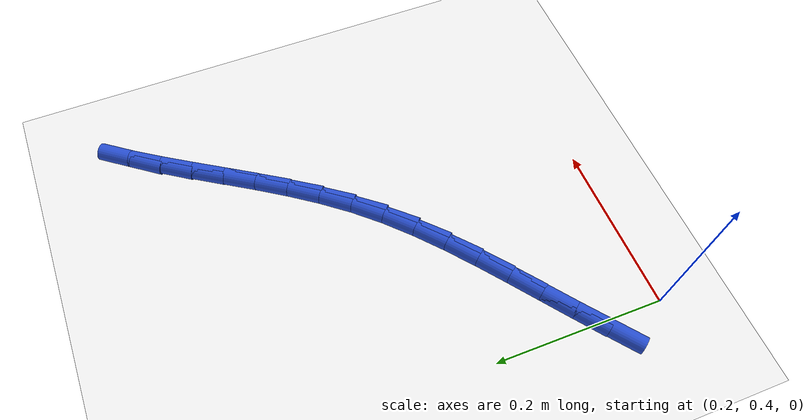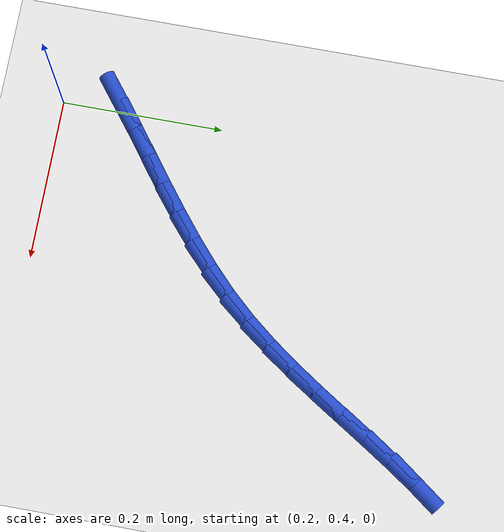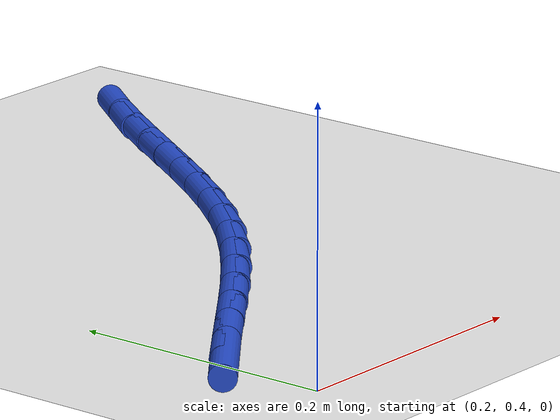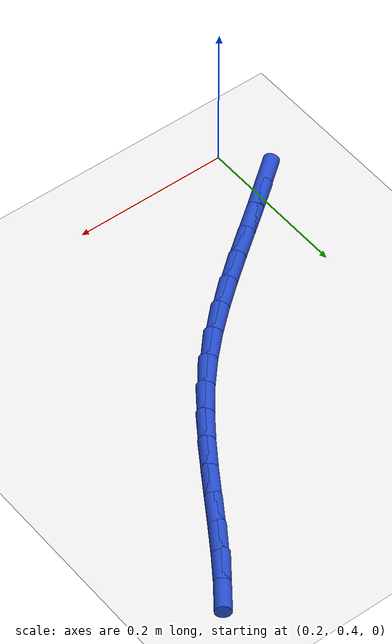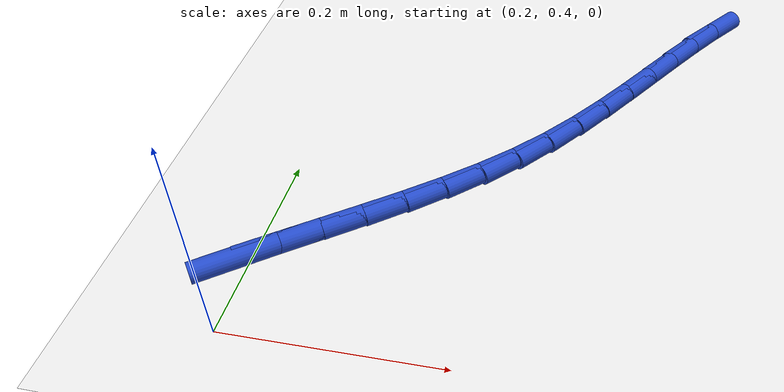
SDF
<sdf version="1.6">
 <world name="default">
  <model name="ground_plane">
   <static>1</static>
   <link name="link">
    <collision name="collision">
     <geometry><plane><normal>0 0 1</normal><size>100 100</size></plane></geometry>
     <surface><friction><ode><mu>100</mu><mu2>50</mu2></ode></friction></surface>
    </collision>
    <visual name="visual">
     <cast_shadows>0</cast_shadows>
     <geometry><plane><normal>0 0 1</normal><size>100 100</size></plane></geometry>
     <material>
      <script><uri>file://media/materials/scripts/gazebo.material</uri><name>Gazebo/WhiteGlow</name></script>
     </material>
    </visual>
   </link>
  </model>
  <model name="line">
   <link name="link_14">
    <pose>0.18993667122609909 0.47164382276963107 0.01 0 1.57 0.6584620969948898</pose>
    <collision name="collision">
     <geometry><cylinder><radius>0.01</radius><length>0.08</length></cylinder></geometry>
    </collision>
    <visual name="visual">
     <material>
      <script><name>Gazebo/Blue</name><uri>file://media/materials/scripts/gazebo.material</uri></script>
     </material>
     <geometry><cylinder><radius>0.01</radius><length>0.08</length></cylinder></geometry>
    </visual>
   </link>
   <link name="link_15">
    <pose>0.2207784414610547 0.4955043611387231 0.01 0 1.57 0.6428274807165333</pose>
    <collision name="collision">
     <geometry><cylinder><radius>0.01</radius><length>0.08</length></cylinder></geometry>
    </collision>
    <visual name="visual">
     <material>
      <script><name>Gazebo/Blue</name><uri>file://media/materials/scripts/gazebo.material</uri></script>
     </material>
     <geometry><cylinder><radius>0.01</radius><length>0.08</length></cylinder></geometry>
    </visual>
   </link>
   <link name="link_16">
    <pose>0.252337023757618 0.5191400978371353 0.01 0 1.57 0.6405757938960666</pose>
    <collision name="collision">
     <geometry><cylinder><radius>0.01</radius><length>0.08</length></cylinder></geometry>
    </collision>
    <visual name="visual">
     <material>
      <script><name>Gazebo/Blue</name><uri>file://media/materials/scripts/gazebo.material</uri></script>
     </material>
     <geometry><cylinder><radius>0.01</radius><length>0.08</length></cylinder></geometry>
    </visual>
   </link>
   <link name="link_17">
    <pose>0.2841740229833098 0.5428726447144009 0.01 0 1.57 0.6513981364890858</pose>
    <collision name="collision">
     <geometry><cylinder><radius>0.01</radius><length>0.08</length></cylinder></geometry>
    </collision>
    <visual name="visual">
     <material>
      <script><name>Gazebo/Blue</name><uri>file://media/materials/scripts/gazebo.material</uri></script>
     </material>
     <geometry><cylinder><radius>0.01</radius><length>0.08</length></cylinder></geometry>
    </visual>
   </link>
   <link name="link_18">
    <pose>0.3158510440056504 0.5670236136200524 0.01 0 1.57 0.6752917136091555</pose>
    <collision name="collision">
     <geometry><cylinder><radius>0.01</radius><length>0.08</length></cylinder></geometry>
    </collision>
    <visual name="visual">
     <material>
      <script><name>Gazebo/Blue</name><uri>file://media/materials/scripts/gazebo.material</uri></script>
     </material>
     <geometry><cylinder><radius>0.01</radius><length>0.08</length></cylinder></geometry>
    </visual>
   </link>
   <link name="link_19">
    <pose>0.34692969169216065 0.5919146164036231 0.01 0 1.57 0.7124984638168886</pose>
    <collision name="collision">
     <geometry><cylinder><radius>0.01</radius><length>0.08</length></cylinder></geometry>
    </collision>
    <visual name="visual">
     <material>
      <script><name>Gazebo/Blue</name><uri>file://media/materials/scripts/gazebo.material</uri></script>
     </material>
     <geometry><cylinder><radius>0.01</radius><length>0.08</length></cylinder></geometry>
    </visual>
   </link>
   <link name="link_20">
    <pose>0.37697157091036126 0.6178672649146462 0.01 0 1.57 0.7633846929806167</pose>
    <collision name="collision">
     <geometry><cylinder><radius>0.01</radius><length>0.08</length></cylinder></geometry>
    </collision>
    <visual name="visual">
     <material>
      <script><name>Gazebo/Blue</name><uri>file://media/materials/scripts/gazebo.material</uri></script>
     </material>
     <geometry><cylinder><radius>0.01</radius><length>0.08</length></cylinder></geometry>
    </visual>
   </link>
   <link name="link_21">
    <pose>0.4055382865277729 0.6452031710026542 0.01 0 1.57 0.8278383300147236</pose>
    <collision name="collision">
     <geometry><cylinder><radius>0.01</radius><length>0.08</length></cylinder></geometry>
    </collision>
    <visual name="visual">
     <material>
      <script><name>Gazebo/Blue</name><uri>file://media/materials/scripts/gazebo.material</uri></script>
     </material>
     <geometry><cylinder><radius>0.01</radius><length>0.08</length></cylinder></geometry>
    </visual>
   </link>
   <link name="link_22">
    <pose>0.4322033556187725 0.674233377022473 0.01 0 1.57 0.8930680956362167</pose>
    <collision name="collision">
     <geometry><cylinder><radius>0.01</radius><length>0.08</length></cylinder></geometry>
    </collision>
    <visual name="visual">
     <material>
      <script><name>Gazebo/Blue</name><uri>file://media/materials/scripts/gazebo.material</uri></script>
     </material>
     <geometry><cylinder><radius>0.01</radius><length>0.08</length></cylinder></geometry>
    </visual>
   </link>
   <link name="link_23">
    <pose>0.4569159327710375 0.704935628673091 0.01 0 1.57 0.9438692397849179</pose>
    <collision name="collision">
     <geometry><cylinder><radius>0.01</radius><length>0.08</length></cylinder></geometry>
    </collision>
    <visual name="visual">
     <material>
      <script><name>Gazebo/Blue</name><uri>file://media/materials/scripts/gazebo.material</uri></script>
     </material>
     <geometry><cylinder><radius>0.01</radius><length>0.08</length></cylinder></geometry>
    </visual>
   </link>
   <link name="link_24">
    <pose>0.4800678327624417 0.7368949069379402 0.01 0 1.57 0.9795064248694407</pose>
    <collision name="collision">
     <geometry><cylinder><radius>0.01</radius><length>0.08</length></cylinder></geometry>
    </collision>
    <visual name="visual">
     <material>
      <script><name>Gazebo/Blue</name><uri>file://media/materials/scripts/gazebo.material</uri></script>
     </material>
     <geometry><cylinder><radius>0.01</radius><length>0.08</length></cylinder></geometry>
    </visual>
   </link>
   <link name="link_25">
    <pose>0.5020763004776527 0.7696736291073912 0.01 0 1.57 1.0002111100952045</pose>
    <collision name="collision">
     <geometry><cylinder><radius>0.01</radius><length>0.08</length></cylinder></geometry>
    </collision>
    <visual name="visual">
     <material>
      <script><name>Gazebo/Blue</name><uri>file://media/materials/scripts/gazebo.material</uri></script>
     </material>
     <geometry><cylinder><radius>0.01</radius><length>0.08</length></cylinder></geometry>
    </visual>
   </link>
   <link name="link_26">
    <pose>0.5233585808013387 0.8028342124718146 0.01 0 1.57 1.0060776420269846</pose>
    <collision name="collision">
     <geometry><cylinder><radius>0.01</radius><length>0.08</length></cylinder></geometry>
    </collision>
    <visual name="visual">
     <material>
      <script><name>Gazebo/Blue</name><uri>file://media/materials/scripts/gazebo.material</uri></script>
     </material>
     <geometry><cylinder><radius>0.01</radius><length>0.08</length></cylinder></geometry>
    </visual>
   </link>
   <link name="link_27">
    <pose>0.5443319186181679 0.8359390743215817 0.01 0 1.57 0.996922951426211</pose>
    <collision name="collision">
     <geometry><cylinder><radius>0.01</radius><length>0.08</length></cylinder></geometry>
    </collision>
    <visual name="visual">
     <material>
      <script><name>Gazebo/Blue</name><uri>file://media/materials/scripts/gazebo.material</uri></script>
     </material>
     <geometry><cylinder><radius>0.01</radius><length>0.08</length></cylinder></geometry>
    </visual>
   </link>
   <link name="link_28">
    <pose>0.5654135588128079 0.868550631947063 0.01 0 1.57 0.9722324267450336</pose>
    <collision name="collision">
     <geometry><cylinder><radius>0.01</radius><length>0.08</length></cylinder></geometry>
    </collision>
    <visual name="visual">
     <material>
      <script><name>Gazebo/Blue</name><uri>file://media/materials/scripts/gazebo.material</uri></script>
     </material>
     <geometry><cylinder><radius>0.01</radius><length>0.08</length></cylinder></geometry>
    </visual>
   </link>
   <link name="link_29">
    <pose>0.5870207462699271 0.9002313026386292 0.01 0 1.57 0.9311950903910811</pose>
    <collision name="collision">
     <geometry><cylinder><radius>0.01</radius><length>0.08</length></cylinder></geometry>
    </collision>
    <visual name="visual">
     <material>
      <script><name>Gazebo/Blue</name><uri>file://media/materials/scripts/gazebo.material</uri></script>
     </material>
     <geometry><cylinder><radius>0.01</radius><length>0.08</length></cylinder></geometry>
    </visual>
   </link>
  </model>
 </world>
</sdf>
